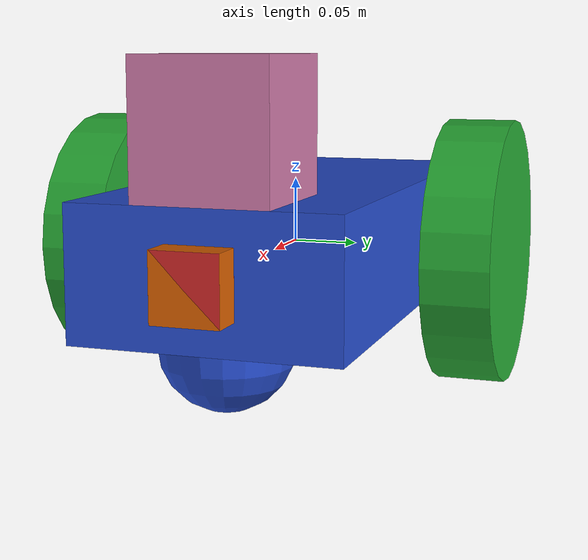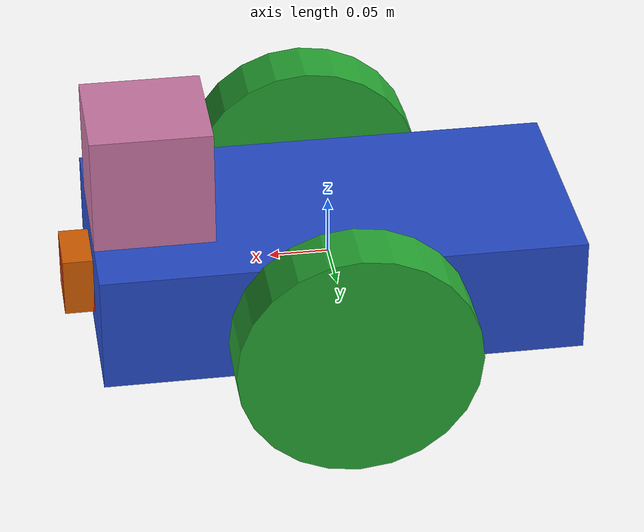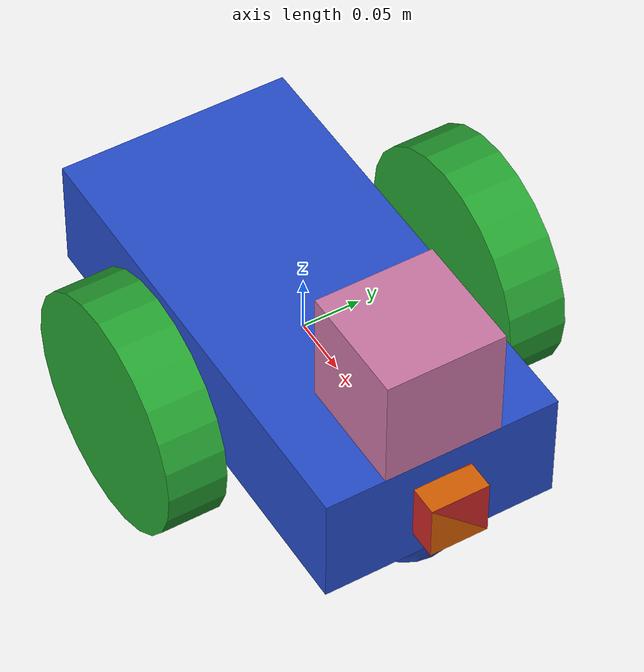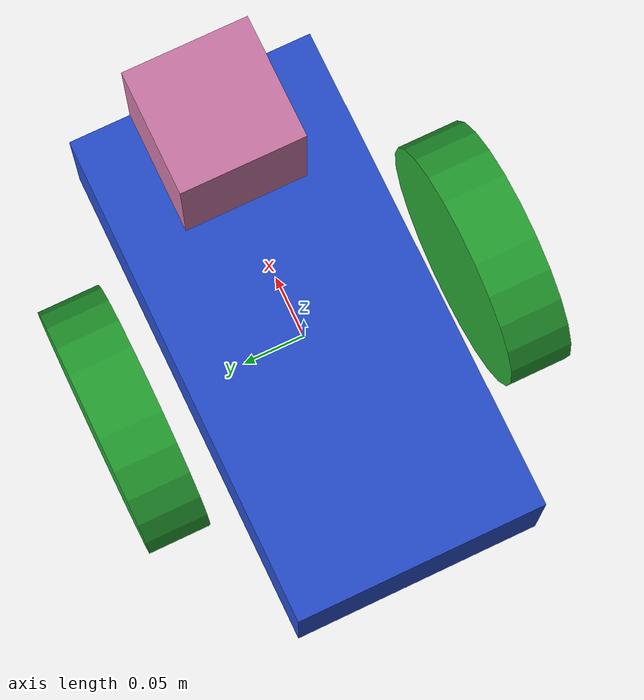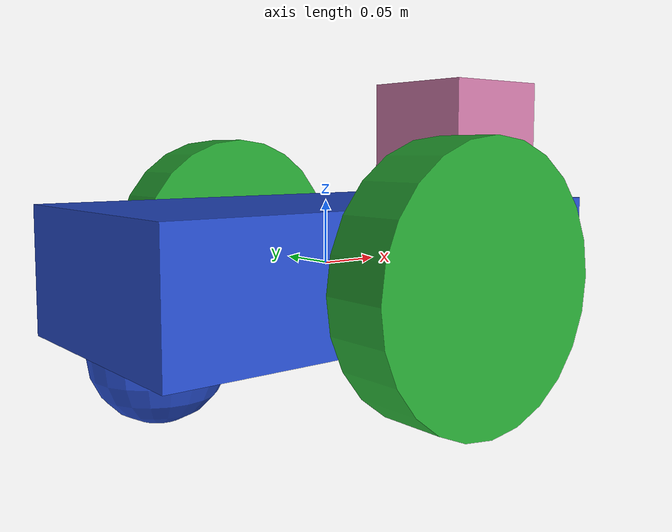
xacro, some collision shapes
<?xml version='1.0'?>

<robot name="my_robot" xmlns:xacro="http://www.ros.org/wiki/xacro">
<xacro:include filename="$(find my_robot)/urdf/my_robot.gazebo" />

  <link name="robot_footprint"></link>

  <joint name="robot_footprint_joint" type="fixed">
    <origin xyz="0 0 0" rpy="0 0 0" />
    <parent link="robot_footprint"/>
    <child link="chassis" />
  </joint>

  <link name='chassis'>
    <pose>0 0 0.1 0 0 0</pose>

    <inertial>
      <mass value="15.0"/>
      <origin xyz="0.0 0 0" rpy=" 0 0 0"/>
      <inertia
          ixx="0.1" ixy="0" ixz="0"
          iyy="0.1" iyz="0"
          izz="0.1"
      />
    </inertial>

    <collision name='collision'>
      <origin xyz="0 0 0" rpy=" 0 0 0"/>
      <geometry>
        <box size=".4 .2 .1"/>
      </geometry>
    </collision>

    <visual name='chassis_visual'>
      <origin xyz="0 0 0" rpy=" 0 0 0"/>
      <geometry>
        <box size=".4 .2 .1"/>
      </geometry>
    </visual>

    <collision name='back_caster_collision'>
      <origin xyz="-0.15 0 -0.05" rpy=" 0 0 0"/>
      <geometry>
        <sphere radius="0.0499"/>
      </geometry>
    </collision>

    <visual name='back_caster_visual'>
      <origin xyz="-0.15 0 -0.05" rpy=" 0 0 0"/>
      <geometry>
        <sphere radius="0.05"/>
      </geometry>
    </visual>

    <collision name='front_caster_collision'>
      <origin xyz="0.15 0 -0.05" rpy=" 0 0 0"/>
      <geometry>
        <sphere radius="0.0499"/>
      </geometry>
    </collision>

    <visual name='front_caster_visual'>
      <origin xyz="0.15 0 -0.05" rpy=" 0 0 0"/>
      <geometry>
        <sphere radius="0.05"/>
      </geometry>
    </visual>

  </link>

<!--The wheels-->

  <joint type="continuous" name="left_wheel_hinge">
    <origin xyz="0 0.15 0" rpy="0 0 0"/>
    <child link="left_wheel"/>
    <parent link="chassis"/>
    <axis xyz="0 1 0" rpy="0 0 0"/>
    <limit effort="10000" velocity="1000"/>
    <dynamics damping="1.0" friction="1.0"/>
  </joint>

  <joint type="continuous" name="right_wheel_hinge">
    <origin xyz="0 -0.15 0" rpy="0 0 0"/>
    <child link="right_wheel"/>
    <parent link="chassis"/>
    <axis xyz="0 1 0" rpy="0 0 0"/>
    <limit effort="10000" velocity="1000"/>
    <dynamics damping="1.0" friction="1.0"/>
  </joint>

  <link name='left_wheel'>
    <inertial>
      <mass value="5.0"/>
      <origin xyz="0.0 0 0" rpy=" 0 1.5707 1.5707"/>
      <inertia
          ixx="0.1" ixy="0" ixz="0"
          iyy="0.1" iyz="0"
          izz="0.1"
      />
    </inertial>

    <collision name='left_wheel_collision'>
      <origin xyz="0 0 0" rpy=" 0 1.5707 1.5707"/>
      <geometry>
        <cylinder radius="0.1" length="0.05"/>
      </geometry>
    </collision>

    <visual name='left_wheel_visual'>
      <origin xyz="0 0 0" rpy=" 0 1.5707 1.5707"/>
      <geometry>
        <cylinder radius="0.1" length="0.05"/>
      </geometry>
    </visual>

	</link>

  <link name='right_wheel'>

    <inertial>
      <mass value="5.0"/>
      <origin xyz="0.0 0 0" rpy=" 0 1.5707 1.5707"/>
      <inertia
          ixx="0.1" ixy="0" ixz="0"
          iyy="0.1" iyz="0"
          izz="0.1"
      />
    </inertial>

    <collision name='right_wheel_collision'>
      <origin xyz="0 0 0" rpy=" 0 1.5707 1.5707"/>
      <geometry>
        <cylinder radius="0.1" length="0.05"/>
      </geometry>
    </collision>

    <visual name='right_wheel_visual'>
      <origin xyz="0 0 0" rpy=" 0 1.5707 1.5707"/>
      <geometry>
        <cylinder radius="0.1" length="0.05"/>
      </geometry>
    </visual>

	</link>

<!-- camera -->

	<link name='camera'>

    <inertial>
      <mass value="0.1"/>
      <origin xyz="0.0 0 0" rpy=" 0 0 0"/>
      <inertia
          ixx="1e-6" ixy="0" ixz="0"
          iyy="1e-6" iyz="0"
          izz="1e-6"
      />
		</inertial>

    <collision name='camera_collision'>
      <origin xyz="0 0 0" rpy=" 0 0 0"/>
      <geometry>
        <box size="0.05 0.05 0.05"/>
      </geometry>
    </collision>

    <visual name='camera_visual'>
      <origin xyz="0 0 0" rpy=" 0 0 0"/>
      <geometry>
        <box size="0.05 0.05 0.05"/>
      </geometry>
    </visual>
	</link>

	<joint type="fixed" name="camera_joint">
		<origin xyz="0.2 0 0" rpy="0 0 0"/>
		<child link="camera"/>
		<parent link="chassis"/>
		<axis xyz="0 1 0" rpy="0 0 0"/>
	</joint>

<!-- Camera link optical -->
  <link name="camera_link_optical">
    <pose>0 0 0 0 0 0</pose>

    <inertial>
      <mass value="0.1"/>
      <origin xyz="0.0 0 0" rpy=" 0 0 0"/>
      <box_inertia m="0.1" x="0.05" y="0.05" z="0.05"/>
      <inertia
          ixx="1e-6" ixy="0" ixz="0"
          iyy="1e-6" iyz="0"
          izz="1e-6"
      />
    </inertial>

    <collision name='collision'>
      <origin xyz="0 0 0" rpy=" 0 0 0"/>
      <geometry>
        <box size=".05 .05 .05"/>
      </geometry>
    </collision>

    <visual name='camera_optical_visual'>
      <origin xyz="0 0 0" rpy=" 0 0 0"/>
      <geometry>
        <box size=".05 .05 .05"/>
      </geometry>
    </visual>
  </link>

  <joint name="camera_optical_joint" type="fixed">
    <origin xyz="0.2 0 0" rpy="-1.5707 0 -1.5707"/>
    <parent link="chassis"/>
    <child link="camera_link_optical"/>
    <axis xyz="0.0 1.0 0.0"/>
  </joint>
<!-- Lidar sensor -->

  <link name='hokuyo'>

    <inertial>
      <mass value="1e-5"/>
      <origin xyz="0.0 0 0" rpy=" 0 0 0"/>
      <inertia
          ixx="1e-6" ixy="0" ixz="0"
          iyy="1e-6" iyz="0"
          izz="1e-6"
      />
    </inertial>

    <collision name='hokuyo_collision'>
      <origin xyz="0 0 0" rpy=" 0 0 0"/>
      <geometry>
        <box size="0.1 0.1 0.1"/>
      </geometry>
    </collision>

    <visual name='hokuyo_visual'>
      <origin xyz="0 0 0" rpy=" 0 0 0"/>
      <geometry>
        <mesh filename="package://my_robot/meshes/hokuyo.dae"/>
      </geometry>
    </visual>
	</link>

	 <joint type="fixed" name="hokuyo_joint">
    <origin xyz="0.15 0 0.1" rpy="0 0 0"/>
    <child link="hokuyo"/>
    <parent link="chassis"/>
    <axis xyz="0 1 0" rpy="0 0 0"/>
  </joint>

<!-- color -->
<gazebo reference="left_wheel">
    <material>Gazebo/Green</material>
</gazebo>
<gazebo reference="right_wheel">
    <material>Gazebo/Green</material>
</gazebo>
<gazebo reference="camera">
    <material>Gazebo/Red</material>
</gazebo>
<gazebo reference="chassis">
    <material>Gazebo/Blue</material>
</gazebo>

</robot>
